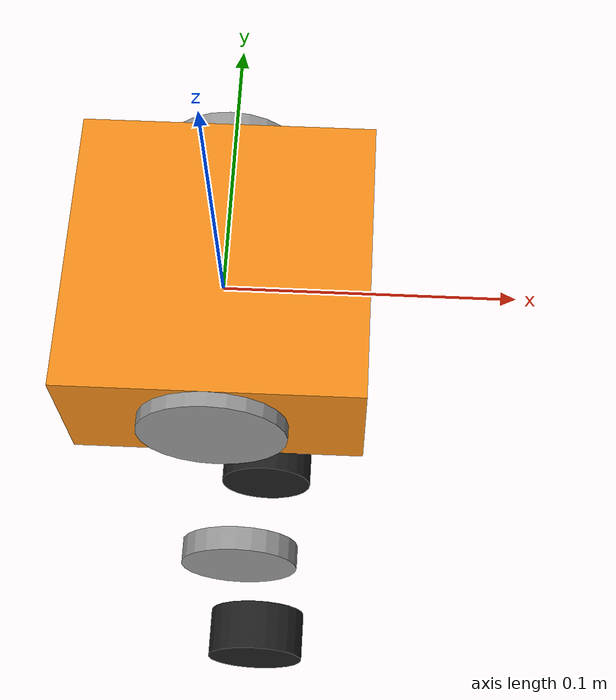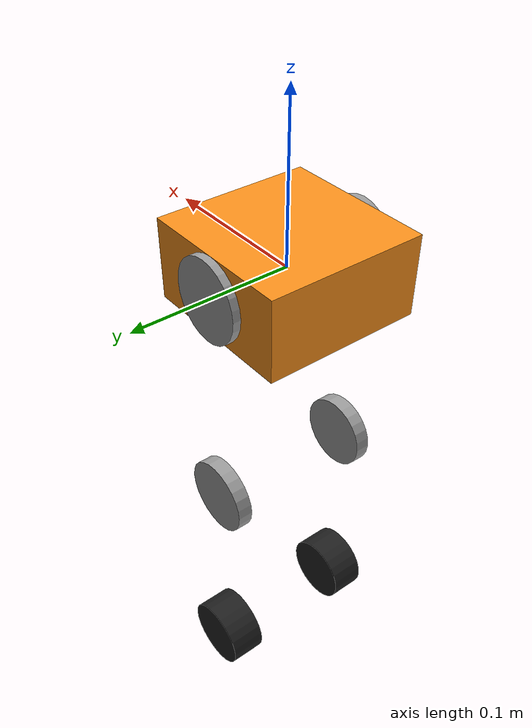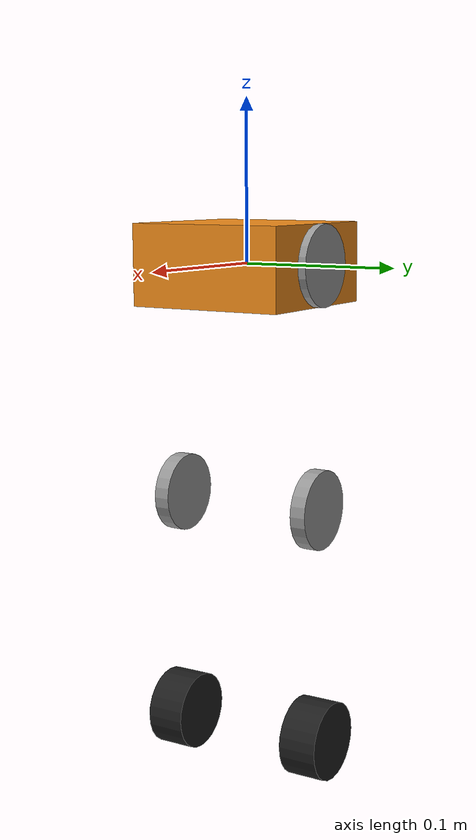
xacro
<?xml version="1.0"?>
<robot name="robot" xmlns:xacro="http://www.ros.org/wiki/xacro">

  <!-- Constants for robot dimensions -->
  <xacro:property name="head_mass" value="0.250" />
  <xacro:property name="head_height" value="0.05" />
  <xacro:property name="head_size" value="0.100" /> <!-- WARNING: Also edit controllers.yaml wheel_separation -->
  <xacro:property name="joint_mass" value="0.100" />
  <xacro:property name="knee_height" value="0.150" /> <!-- From this is the thigh length -->
  <xacro:property name="wheel_radius" value="0.025" /> <!-- WARNING: Also edit controllers.yaml wheel_radius -->
  <xacro:property name="wheel_length" value="0.025" />
  <xacro:property name="wheel_mass" value="0.100" />

  <xacro:include filename="$(find wheeled_biped_description)/models/inertial_macros.xacro" />
  <!-- Import all Gazebo-customization elements, including Gazebo colors -->
  <xacro:include filename="$(find wheeled_biped_description)/models/model.gazebo.xacro" />
  <!-- Import Rviz colors -->
  <xacro:include filename="$(find wheeled_biped_description)/models/materials.xacro" />

  <xacro:include filename="$(find wheeled_biped_description)/models/ros2_control.xacro" />

  <!-- Base Link -->
  <link name="base_link">

  </link>

  <joint name="head_joint" type="fixed">
    <parent link="base_link"/>
    <child link="head_link"/>
    <origin xyz="0 0 0" rpy="0 0 0"/>
  </joint>

  <link name="head_link">
    <xacro:inertial_box mass="${head_mass}" x="${head_size}" y="${head_size}" z="${head_height}">
      <origin xyz="0 0 0" rpy="0 0 0"/>
    </xacro:inertial_box>

    <collision>
      <origin xyz="0 0 0" rpy="0 0 0"/>
      <geometry>
	    <box size="${head_size} ${head_size} ${head_height}"/>
      </geometry>
    </collision>

    <visual>
      <origin xyz="0 0 0" rpy="0 0 0"/>
      <geometry>
	    <box size="${head_size} ${head_size} ${head_height}"/>
      </geometry>
      <material name="orange"/>
    </visual>
  </link>

  <joint name="imu_joint" type="fixed">
    <parent link="head_link"/>
    <child link="imu_link"/>
    <origin xyz="0 0 0" rpy="0 0 0"/>
  </joint>

  <link name="imu_link">
    <collision>
      <geometry>
	    <box size="0.001 0.001 0.001"/>
      </geometry>
    </collision>

    <visual>
      <geometry>
	    <box size="0.001 0.001 0.001"/>
      </geometry>
      <material name="orange"/>
    </visual>

    <xacro:inertial_box mass="0.002" x="0.001" y="0.001" z="0.001">
      <origin xyz="0 0 0" rpy="0 0 0"/>
    </xacro:inertial_box>
  </link>

  <joint name="upper_left_leg_joint" type="revolute">
    <parent link="head_link"/>
    <child link="upper_left_leg_link"/>
    <origin xyz="0 ${head_size/2} 0" rpy="${-pi/2} 0 0"/>
    <axis xyz="0 0 1"/>
    <dynamics damping="0.5"/>
    <limit lower="${-pi/2}" upper="${pi/2}" effort="100" velocity="1.0"/>
  </joint>

  <link name="upper_left_leg_link">
    <collision>
      <geometry>
	    <cylinder radius="0.025" length="0.01"/>
      </geometry>
    </collision>

    <visual>
      <geometry>
	    <cylinder radius="0.025" length="0.01"/>
      </geometry>
      <material name="grey"/>
    </visual>

    <xacro:inertial_cylinder mass="${joint_mass}" radius="0.025" length="0.025">
      <origin xyz="0 0 0" rpy="0 0 0"/>
    </xacro:inertial_cylinder>
  </link>

  <joint name="lower_left_leg_joint" type="revolute">
    <parent link="upper_left_leg_link"/>
    <child link="lower_left_leg_link"/>
    <origin xyz="0 ${knee_height} 0" rpy="0 0 0"/>
    <axis xyz="0 0 1"/>
    <dynamics damping="0.5"/>
    <!-- Negative is forwards, because of the right hand rule on the joint -->
    <limit lower="${-(pi/2 + pi/4)}" upper="0" effort="100" velocity="1.0"/>
  </joint>

  <link name="lower_left_leg_link">
    <collision>
      <geometry>
	    <cylinder radius="0.025" length="0.01"/>
      </geometry>
    </collision>

    <visual>
      <geometry>
	    <cylinder radius="0.025" length="0.01"/>
      </geometry>
      <material name="grey"/>
    </visual>

    <xacro:inertial_cylinder mass="${joint_mass}" radius="0.025" length="0.025">
      <origin xyz="0 0 0" rpy="0 0 0"/>
    </xacro:inertial_cylinder>
  </link>

  <joint name="left_wheel_joint" type="continuous">
    <parent link="lower_left_leg_link"/>
    <child link="left_wheel_link"/>
    <origin xyz="0 ${knee_height} 0" rpy="0 0 0"/>
    <axis xyz="0 0 1"/>
    <dynamics damping="0.5"/>
  </joint>

  <link name="left_wheel_link">
    <collision>
      <geometry>
	    <cylinder radius="${wheel_radius}" length="${wheel_length}"/>
      </geometry>
    </collision>

    <visual>
      <geometry>
	    <cylinder radius="${wheel_radius}" length="${wheel_length}"/>
      </geometry>
      <material name="black"/>
    </visual>

    <xacro:inertial_cylinder mass="${wheel_mass}" radius="${wheel_radius}" length="${wheel_length}">
      <origin xyz="0 0 0" rpy="0 0 0"/>
    </xacro:inertial_cylinder>
  </link>

  <joint name="upper_right_leg_joint" type="revolute">
    <parent link="head_link"/>
    <child link="upper_right_leg_link"/>
    <origin xyz="0 ${-head_size/2} 0" rpy="${-pi/2} 0 0"/>
    <axis xyz="0 0 1"/>
    <dynamics damping="0.5"/>
    <limit lower="${-pi/2}" upper="${pi/2}" effort="100" velocity="1.0"/>
  </joint>

  <link name="upper_right_leg_link">
    <collision>
      <geometry>
	    <cylinder radius="0.025" length="0.01"/>
      </geometry>
    </collision>

    <visual>
      <geometry>
	    <cylinder radius="0.025" length="0.01"/>
      </geometry>
      <material name="grey"/>
    </visual>

    <xacro:inertial_cylinder mass="${joint_mass}" radius="0.025" length="0.025">
      <origin xyz="0 0 0" rpy="0 0 0"/>
    </xacro:inertial_cylinder>
  </link>

  <joint name="lower_right_leg_joint" type="revolute">
    <parent link="upper_right_leg_link"/>
    <child link="lower_right_leg_link"/>
    <origin xyz="0 ${knee_height} 0" rpy="0 0 0"/>
    <axis xyz="0 0 1"/>
    <dynamics damping="0.5"/>
    <!-- Negative is forwards, because of the right hand rule on the joint -->
    <limit lower="${-(pi/2 + pi/4)}" upper="0" effort="100" velocity="1.0"/>
  </joint>

  <link name="lower_right_leg_link">
    <collision>
      <geometry>
	    <cylinder radius="0.025" length="0.01"/>
      </geometry>
    </collision>

    <visual>
      <geometry>
	    <cylinder radius="0.025" length="0.01"/>
      </geometry>
      <material name="grey"/>
    </visual>

    <xacro:inertial_cylinder mass="${joint_mass}" radius="0.025" length="0.025">
      <origin xyz="0 0 0" rpy="0 0 0"/>
    </xacro:inertial_cylinder>
  </link>

  <joint name="right_wheel_joint" type="continuous">
    <parent link="lower_right_leg_link"/>
    <child link="right_wheel_link"/>
    <origin xyz="0 ${knee_height} 0" rpy="0 0 0"/>
    <axis xyz="0 0 1"/>
    <dynamics damping="0.5"/>
  </joint>

  <link name="right_wheel_link">
    <collision>
      <geometry>
	    <cylinder radius="${wheel_radius}" length="${wheel_length}"/>
      </geometry>
    </collision>

    <visual>
      <geometry>
	    <cylinder radius="${wheel_radius}" length="${wheel_length}"/>
      </geometry>
      <material name="black"/>
    </visual>

    <xacro:inertial_cylinder mass="${wheel_mass}" radius="${wheel_radius}" length="${wheel_length}">
      <origin xyz="0 0 0" rpy="0 0 0"/>
    </xacro:inertial_cylinder>
  </link>
</robot>
